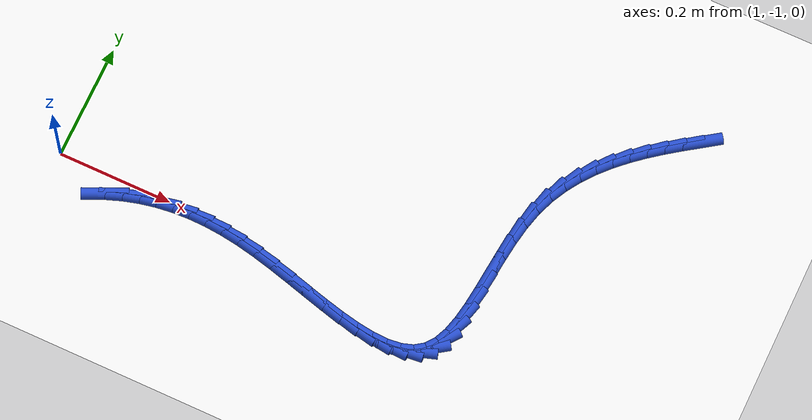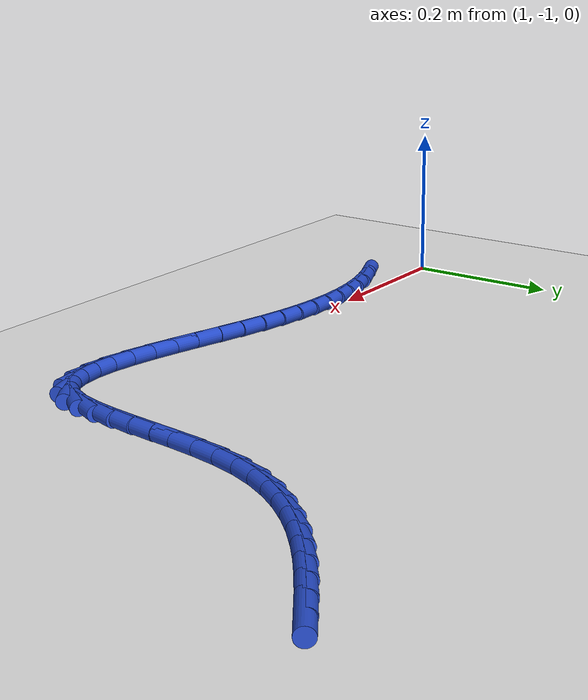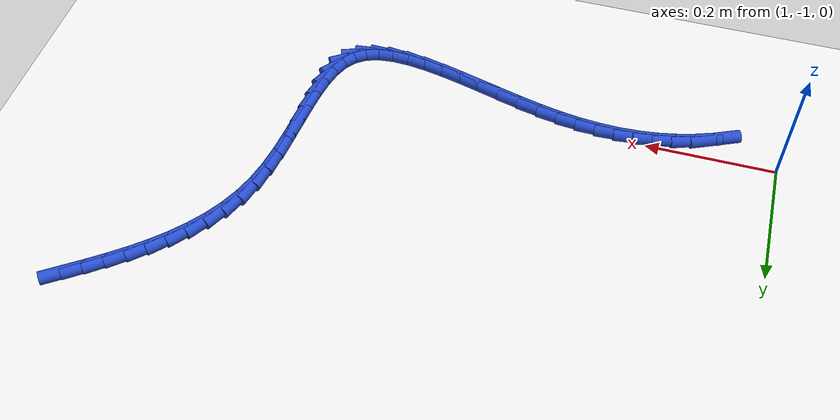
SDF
<sdf version="1.6">
 <world name="default">
  <model name="ground_plane">
   <static>1</static>
   <link name="link">
    <collision name="collision">
     <geometry><plane><normal>0 0 1</normal><size>100 100</size></plane></geometry>
     <surface><friction><ode><mu>100</mu><mu2>50</mu2></ode></friction></surface>
    </collision>
    <visual name="visual">
     <cast_shadows>0</cast_shadows>
     <geometry><plane><normal>0 0 1</normal><size>100 100</size></plane></geometry>
     <material>
      <script><uri>file://media/materials/scripts/gazebo.material</uri><name>Gazebo/WhiteGlow</name></script>
     </material>
    </visual>
   </link>
  </model>
  <model name="line">
   <link name="link_140">
    <pose>1.9505852316931442 -0.5416597754283873 0.01 0 1.57 0.6037733046722075</pose>
    <collision name="collision">
     <geometry><cylinder><radius>0.01</radius><length>0.08</length></cylinder></geometry>
    </collision>
    <visual name="visual">
     <material>
      <script><name>Gazebo/Blue</name><uri>file://media/materials/scripts/gazebo.material</uri></script>
     </material>
     <geometry><cylinder><radius>0.01</radius><length>0.08</length></cylinder></geometry>
    </visual>
   </link>
   <link name="link_141">
    <pose>1.9259888988393992 -0.5586236336538764 0.01 0 1.57 0.6257481165051744</pose>
    <collision name="collision">
     <geometry><cylinder><radius>0.01</radius><length>0.08</length></cylinder></geometry>
    </collision>
    <visual name="visual">
     <material>
      <script><name>Gazebo/Blue</name><uri>file://media/materials/scripts/gazebo.material</uri></script>
     </material>
     <geometry><cylinder><radius>0.01</radius><length>0.08</length></cylinder></geometry>
    </visual>
   </link>
   <link name="link_142">
    <pose>1.9016312277319858 -0.5762250371929364 0.01 0 1.57 0.6589991702993073</pose>
    <collision name="collision">
     <geometry><cylinder><radius>0.01</radius><length>0.08</length></cylinder></geometry>
    </collision>
    <visual name="visual">
     <material>
      <script><name>Gazebo/Blue</name><uri>file://media/materials/scripts/gazebo.material</uri></script>
     </material>
     <geometry><cylinder><radius>0.01</radius><length>0.08</length></cylinder></geometry>
    </visual>
   </link>
   <link name="link_143">
    <pose>1.8778269636547729 -0.5946614989622281 0.01 0 1.57 0.7034904250406478</pose>
    <collision name="collision">
     <geometry><cylinder><radius>0.01</radius><length>0.08</length></cylinder></geometry>
    </collision>
    <visual name="visual">
     <material>
      <script><name>Gazebo/Blue</name><uri>file://media/materials/scripts/gazebo.material</uri></script>
     </material>
     <geometry><cylinder><radius>0.01</radius><length>0.08</length></cylinder></geometry>
    </visual>
   </link>
   <link name="link_144">
    <pose>1.8548919779071276 -0.6141166213486677 0.01 0 1.57 0.7596428998936802</pose>
    <collision name="collision">
     <geometry><cylinder><radius>0.01</radius><length>0.08</length></cylinder></geometry>
    </collision>
    <visual name="visual">
     <material>
      <script><name>Gazebo/Blue</name><uri>file://media/materials/scripts/gazebo.material</uri></script>
     </material>
     <geometry><cylinder><radius>0.01</radius><length>0.08</length></cylinder></geometry>
    </visual>
   </link>
   <link name="link_145">
    <pose>1.8331421417884173 -0.6347740067391721 0.01 0 1.57 0.8278023327826615</pose>
    <collision name="collision">
     <geometry><cylinder><radius>0.01</radius><length>0.08</length></cylinder></geometry>
    </collision>
    <visual name="visual">
     <material>
      <script><name>Gazebo/Blue</name><uri>file://media/materials/scripts/gazebo.material</uri></script>
     </material>
     <geometry><cylinder><radius>0.01</radius><length>0.08</length></cylinder></geometry>
    </visual>
   </link>
   <link name="link_146">
    <pose>1.8128933265980078 -0.6568172575206574 0.01 0 1.57 0.9080014457962702</pose>
    <collision name="collision">
     <geometry><cylinder><radius>0.01</radius><length>0.08</length></cylinder></geometry>
    </collision>
    <visual name="visual">
     <material>
      <script><name>Gazebo/Blue</name><uri>file://media/materials/scripts/gazebo.material</uri></script>
     </material>
     <geometry><cylinder><radius>0.01</radius><length>0.08</length></cylinder></geometry>
    </visual>
   </link>
   <link name="link_147">
    <pose>1.7944614036352653 -0.6804299760800407 0.01 0 1.57 0.999665829079377</pose>
    <collision name="collision">
     <geometry><cylinder><radius>0.01</radius><length>0.08</length></cylinder></geometry>
    </collision>
    <visual name="visual">
     <material>
      <script><name>Gazebo/Blue</name><uri>file://media/materials/scripts/gazebo.material</uri></script>
     </material>
     <geometry><cylinder><radius>0.01</radius><length>0.08</length></cylinder></geometry>
    </visual>
   </link>
   <link name="link_148">
    <pose>1.7781622441995573 -0.7057957648042377 0.01 0 1.57 1.1013261944606585</pose>
    <collision name="collision">
     <geometry><cylinder><radius>0.01</radius><length>0.08</length></cylinder></geometry>
    </collision>
    <visual name="visual">
     <material>
      <script><name>Gazebo/Blue</name><uri>file://media/materials/scripts/gazebo.material</uri></script>
     </material>
     <geometry><cylinder><radius>0.01</radius><length>0.08</length></cylinder></geometry>
    </visual>
   </link>
   <link name="link_149">
    <pose>1.7643117195902502 -0.7330982260801652 0.01 0 1.57 1.2104624530986947</pose>
    <collision name="collision">
     <geometry><cylinder><radius>0.01</radius><length>0.08</length></cylinder></geometry>
    </collision>
    <visual name="visual">
     <material>
      <script><name>Gazebo/Blue</name><uri>file://media/materials/scripts/gazebo.material</uri></script>
     </material>
     <geometry><cylinder><radius>0.01</radius><length>0.08</length></cylinder></geometry>
    </visual>
   </link>
   <link name="link_150">
    <pose>1.7532257011067096 -0.7625209622947396 0.01 0 1.57 1.3172727877394144</pose>
    <collision name="collision">
     <geometry><cylinder><radius>0.01</radius><length>0.08</length></cylinder></geometry>
    </collision>
    <visual name="visual">
     <material>
      <script><name>Gazebo/Blue</name><uri>file://media/materials/scripts/gazebo.material</uri></script>
     </material>
     <geometry><cylinder><radius>0.01</radius><length>0.08</length></cylinder></geometry>
    </visual>
   </link>
   <link name="link_151">
    <pose>1.7450468641678811 -0.7940874674615553 0.01 0 1.57 1.3965500708115814</pose>
    <collision name="collision">
     <geometry><cylinder><radius>0.01</radius><length>0.08</length></cylinder></geometry>
    </collision>
    <visual name="visual">
     <material>
      <script><name>Gazebo/Blue</name><uri>file://media/materials/scripts/gazebo.material</uri></script>
     </material>
     <geometry><cylinder><radius>0.01</radius><length>0.08</length></cylinder></geometry>
    </visual>
   </link>
   <link name="link_152">
    <pose>1.7392219159425075 -0.8271778580256858 0.01 0 1.57 1.4473132422828143</pose>
    <collision name="collision">
     <geometry><cylinder><radius>0.01</radius><length>0.08</length></cylinder></geometry>
    </collision>
    <visual name="visual">
     <material>
      <script><name>Gazebo/Blue</name><uri>file://media/materials/scripts/gazebo.material</uri></script>
     </material>
     <geometry><cylinder><radius>0.01</radius><length>0.08</length></cylinder></geometry>
    </visual>
   </link>
   <link name="link_153">
    <pose>1.7350227716980244 -0.8610106666409492 0.01 0 1.57 1.4734120203321799</pose>
    <collision name="collision">
     <geometry><cylinder><radius>0.01</radius><length>0.08</length></cylinder></geometry>
    </collision>
    <visual name="visual">
     <material>
      <script><name>Gazebo/Blue</name><uri>file://media/materials/scripts/gazebo.material</uri></script>
     </material>
     <geometry><cylinder><radius>0.01</radius><length>0.08</length></cylinder></geometry>
    </visual>
   </link>
   <link name="link_154">
    <pose>1.7317213467012453 -0.894804425960589 0.01 0 1.57 1.4761006456327983</pose>
    <collision name="collision">
     <geometry><cylinder><radius>0.01</radius><length>0.08</length></cylinder></geometry>
    </collision>
    <visual name="visual">
     <material>
      <script><name>Gazebo/Blue</name><uri>file://media/materials/scripts/gazebo.material</uri></script>
     </material>
     <geometry><cylinder><radius>0.01</radius><length>0.08</length></cylinder></geometry>
    </visual>
   </link>
   <link name="link_155">
    <pose>1.7285895562189841 -0.9277776686378497 0.01 0 1.57 1.4537031649670396</pose>
    <collision name="collision">
     <geometry><cylinder><radius>0.01</radius><length>0.08</length></cylinder></geometry>
    </collision>
    <visual name="visual">
     <material>
      <script><name>Gazebo/Blue</name><uri>file://media/materials/scripts/gazebo.material</uri></script>
     </material>
     <geometry><cylinder><radius>0.01</radius><length>0.08</length></cylinder></geometry>
    </visual>
   </link>
   <link name="link_156">
    <pose>1.724899315518054 -0.9591489273259731 0.01 0 1.57 1.400768823338802</pose>
    <collision name="collision">
     <geometry><cylinder><radius>0.01</radius><length>0.08</length></cylinder></geometry>
    </collision>
    <visual name="visual">
     <material>
      <script><name>Gazebo/Blue</name><uri>file://media/materials/scripts/gazebo.material</uri></script>
     </material>
     <geometry><cylinder><radius>0.01</radius><length>0.08</length></cylinder></geometry>
    </visual>
   </link>
   <link name="link_157">
    <pose>1.7199225398652693 -0.9881367346782035 0.01 0 1.57 1.3063910602905806</pose>
    <collision name="collision">
     <geometry><cylinder><radius>0.01</radius><length>0.08</length></cylinder></geometry>
    </collision>
    <visual name="visual">
     <material>
      <script><name>Gazebo/Blue</name><uri>file://media/materials/scripts/gazebo.material</uri></script>
     </material>
     <geometry><cylinder><radius>0.01</radius><length>0.08</length></cylinder></geometry>
    </visual>
   </link>
   <link name="link_158">
    <pose>1.7129311445274433 -1.0139596233477848 0.01 0 1.57 1.1521441915518917</pose>
    <collision name="collision">
     <geometry><cylinder><radius>0.01</radius><length>0.08</length></cylinder></geometry>
    </collision>
    <visual name="visual">
     <material>
      <script><name>Gazebo/Blue</name><uri>file://media/materials/scripts/gazebo.material</uri></script>
     </material>
     <geometry><cylinder><radius>0.01</radius><length>0.08</length></cylinder></geometry>
    </visual>
   </link>
   <link name="link_159">
    <pose>1.7031970447713896 -1.0358361259879603 0.01 0 1.57 0.9146019049053974</pose>
    <collision name="collision">
     <geometry><cylinder><radius>0.01</radius><length>0.08</length></cylinder></geometry>
    </collision>
    <visual name="visual">
     <material>
      <script><name>Gazebo/Blue</name><uri>file://media/materials/scripts/gazebo.material</uri></script>
     </material>
     <geometry><cylinder><radius>0.01</radius><length>0.08</length></cylinder></geometry>
    </visual>
   </link>
   <link name="link_160">
    <pose>1.6899921558639217 -1.0529847752519734 0.01 0 1.57 0.6021349946953102</pose>
    <collision name="collision">
     <geometry><cylinder><radius>0.01</radius><length>0.08</length></cylinder></geometry>
    </collision>
    <visual name="visual">
     <material>
      <script><name>Gazebo/Blue</name><uri>file://media/materials/scripts/gazebo.material</uri></script>
     </material>
     <geometry><cylinder><radius>0.01</radius><length>0.08</length></cylinder></geometry>
    </visual>
   </link>
   <link name="link_161">
    <pose>1.6727589283634765 -1.0648287530941156 0.01 0 1.57 0.3177025816119068</pose>
    <collision name="collision">
     <geometry><cylinder><radius>0.01</radius><length>0.08</length></cylinder></geometry>
    </collision>
    <visual name="visual">
     <material>
      <script><name>Gazebo/Blue</name><uri>file://media/materials/scripts/gazebo.material</uri></script>
     </material>
     <geometry><cylinder><radius>0.01</radius><length>0.08</length></cylinder></geometry>
    </visual>
   </link>
   <link name="link_162">
    <pose>1.651732905209707 -1.0717429846529654 0.01 0 1.57 0.1078168873749518</pose>
    <collision name="collision">
     <geometry><cylinder><radius>0.01</radius><length>0.08</length></cylinder></geometry>
    </collision>
    <visual name="visual">
     <material>
      <script><name>Gazebo/Blue</name><uri>file://media/materials/scripts/gazebo.material</uri></script>
     </material>
     <geometry><cylinder><radius>0.01</radius><length>0.08</length></cylinder></geometry>
    </visual>
   </link>
   <link name="link_163">
    <pose>1.6273800086618726 -1.0743788596409964 0.01 0 1.57 -0.03640149948559205</pose>
    <collision name="collision">
     <geometry><cylinder><radius>0.01</radius><length>0.08</length></cylinder></geometry>
    </collision>
    <visual name="visual">
     <material>
      <script><name>Gazebo/Blue</name><uri>file://media/materials/scripts/gazebo.material</uri></script>
     </material>
     <geometry><cylinder><radius>0.01</radius><length>0.08</length></cylinder></geometry>
    </visual>
   </link>
   <link name="link_164">
    <pose>1.6001661860964977 -1.0733877979124289 0.01 0 1.57 -0.13317329311911386</pose>
    <collision name="collision">
     <geometry><cylinder><radius>0.01</radius><length>0.08</length></cylinder></geometry>
    </collision>
    <visual name="visual">
     <material>
      <script><name>Gazebo/Blue</name><uri>file://media/materials/scripts/gazebo.material</uri></script>
     </material>
     <geometry><cylinder><radius>0.01</radius><length>0.08</length></cylinder></geometry>
    </visual>
   </link>
   <link name="link_165">
    <pose>1.57055738489011 -1.069421219321484 0.01 0 1.57 -0.19688053026487135</pose>
    <collision name="collision">
     <geometry><cylinder><radius>0.01</radius><length>0.08</length></cylinder></geometry>
    </collision>
    <visual name="visual">
     <material>
      <script><name>Gazebo/Blue</name><uri>file://media/materials/scripts/gazebo.material</uri></script>
     </material>
     <geometry><cylinder><radius>0.01</radius><length>0.08</length></cylinder></geometry>
    </visual>
   </link>
   <link name="link_166">
    <pose>1.5390195524192343 -1.0631305437223806 0.01 0 1.57 -0.23678044862469835</pose>
    <collision name="collision">
     <geometry><cylinder><radius>0.01</radius><length>0.08</length></cylinder></geometry>
    </collision>
    <visual name="visual">
     <material>
      <script><name>Gazebo/Blue</name><uri>file://media/materials/scripts/gazebo.material</uri></script>
     </material>
     <geometry><cylinder><radius>0.01</radius><length>0.08</length></cylinder></geometry>
    </visual>
   </link>
   <link name="link_167">
    <pose>1.5060186360603969 -1.0551671909693394 0.01 0 1.57 -0.25836198515806563</pose>
    <collision name="collision">
     <geometry><cylinder><radius>0.01</radius><length>0.08</length></cylinder></geometry>
    </collision>
    <visual name="visual">
     <material>
      <script><name>Gazebo/Blue</name><uri>file://media/materials/scripts/gazebo.material</uri></script>
     </material>
     <geometry><cylinder><radius>0.01</radius><length>0.08</length></cylinder></geometry>
    </visual>
   </link>
   <link name="link_168">
    <pose>1.4720205831901245 -1.0461825809165806 0.01 0 1.57 -0.26456333083014294</pose>
    <collision name="collision">
     <geometry><cylinder><radius>0.01</radius><length>0.08</length></cylinder></geometry>
    </collision>
    <visual name="visual">
     <material>
      <script><name>Gazebo/Blue</name><uri>file://media/materials/scripts/gazebo.material</uri></script>
     </material>
     <geometry><cylinder><radius>0.01</radius><length>0.08</length></cylinder></geometry>
    </visual>
   </link>
   <link name="link_169">
    <pose>1.4374913411849426 -1.0368281334183245 0.01 0 1.57 -0.25648691995834694</pose>
    <collision name="collision">
     <geometry><cylinder><radius>0.01</radius><length>0.08</length></cylinder></geometry>
    </collision>
    <visual name="visual">
     <material>
      <script><name>Gazebo/Blue</name><uri>file://media/materials/scripts/gazebo.material</uri></script>
     </material>
     <geometry><cylinder><radius>0.01</radius><length>0.08</length></cylinder></geometry>
    </visual>
   </link>
   <link name="link_170">
    <pose>1.4028968574213767 -1.0277552683287905 0.01 0 1.57 -0.23370130859535818</pose>
    <collision name="collision">
     <geometry><cylinder><radius>0.01</radius><length>0.08</length></cylinder></geometry>
    </collision>
    <visual name="visual">
     <material>
      <script><name>Gazebo/Blue</name><uri>file://media/materials/scripts/gazebo.material</uri></script>
     </material>
     <geometry><cylinder><radius>0.01</radius><length>0.08</length></cylinder></geometry>
    </visual>
   </link>
   <link name="link_171">
    <pose>1.3687030792759547 -1.0196154055021998 0.01 0 1.57 -0.19443145187646702</pose>
    <collision name="collision">
     <geometry><cylinder><radius>0.01</radius><length>0.08</length></cylinder></geometry>
    </collision>
    <visual name="visual">
     <material>
      <script><name>Gazebo/Blue</name><uri>file://media/materials/scripts/gazebo.material</uri></script>
     </material>
     <geometry><cylinder><radius>0.01</radius><length>0.08</length></cylinder></geometry>
    </visual>
   </link>
   <link name="link_172">
    <pose>1.3353677448914354 -1.0130510399541697 0.01 0 1.57 -0.14219596317292668</pose>
    <collision name="collision">
     <geometry><cylinder><radius>0.01</radius><length>0.08</length></cylinder></geometry>
    </collision>
    <visual name="visual">
     <material>
      <script><name>Gazebo/Blue</name><uri>file://media/materials/scripts/gazebo.material</uri></script>
     </material>
     <geometry><cylinder><radius>0.01</radius><length>0.08</length></cylinder></geometry>
    </visual>
   </link>
   <link name="link_173">
    <pose>1.303096944347464 -1.0084310822938012 0.01 0 1.57 -0.0836770551184167</pose>
    <collision name="collision">
     <geometry><cylinder><radius>0.01</radius><length>0.08</length></cylinder></geometry>
    </collision>
    <visual name="visual">
     <material>
      <script><name>Gazebo/Blue</name><uri>file://media/materials/scripts/gazebo.material</uri></script>
     </material>
     <geometry><cylinder><radius>0.01</radius><length>0.08</length></cylinder></geometry>
    </visual>
   </link>
   <link name="link_174">
    <pose>1.271804296637713 -1.0058064771284343 0.01 0 1.57 -0.019597258232559003</pose>
    <collision name="collision">
     <geometry><cylinder><radius>0.01</radius><length>0.08</length></cylinder></geometry>
    </collision>
    <visual name="visual">
     <material>
      <script><name>Gazebo/Blue</name><uri>file://media/materials/scripts/gazebo.material</uri></script>
     </material>
     <geometry><cylinder><radius>0.01</radius><length>0.08</length></cylinder></geometry>
    </visual>
   </link>
   <link name="link_175">
    <pose>1.2413869890299365 -1.0052103049740766 0.01 0 1.57 0.04938979721185323</pose>
    <collision name="collision">
     <geometry><cylinder><radius>0.01</radius><length>0.08</length></cylinder></geometry>
    </collision>
    <visual name="visual">
     <material>
      <script><name>Gazebo/Blue</name><uri>file://media/materials/scripts/gazebo.material</uri></script>
     </material>
     <geometry><cylinder><radius>0.01</radius><length>0.08</length></cylinder></geometry>
    </visual>
   </link>
   <link name="link_176">
    <pose>1.2117422087918897 -1.0066756463467366 0.01 0 1.57 0.12224936668471098</pose>
    <collision name="collision">
     <geometry><cylinder><radius>0.01</radius><length>0.08</length></cylinder></geometry>
    </collision>
    <visual name="visual">
     <material>
      <script><name>Gazebo/Blue</name><uri>file://media/materials/scripts/gazebo.material</uri></script>
     </material>
     <geometry><cylinder><radius>0.01</radius><length>0.08</length></cylinder></geometry>
    </visual>
   </link>
   <link name="link_177">
    <pose>1.1827671431913271 -1.0102355817624218 0.01 0 1.57 0.19759786470193158</pose>
    <collision name="collision">
     <geometry><cylinder><radius>0.01</radius><length>0.08</length></cylinder></geometry>
    </collision>
    <visual name="visual">
     <material>
      <script><name>Gazebo/Blue</name><uri>file://media/materials/scripts/gazebo.material</uri></script>
     </material>
     <geometry><cylinder><radius>0.01</radius><length>0.08</length></cylinder></geometry>
    </visual>
   </link>
   <link name="link_178">
    <pose>1.154358979496005 -1.01592319173714 0.01 0 1.57 0.27380574654429096</pose>
    <collision name="collision">
     <geometry><cylinder><radius>0.01</radius><length>0.08</length></cylinder></geometry>
    </collision>
    <visual name="visual">
     <material>
      <script><name>Gazebo/Blue</name><uri>file://media/materials/scripts/gazebo.material</uri></script>
     </material>
     <geometry><cylinder><radius>0.01</radius><length>0.08</length></cylinder></geometry>
    </visual>
   </link>
   <link name="link_179">
    <pose>1.1264149049736774 -1.0237715567868997 0.01 0 1.57 0.34915814741641293</pose>
    <collision name="collision">
     <geometry><cylinder><radius>0.01</radius><length>0.08</length></cylinder></geometry>
    </collision>
    <visual name="visual">
     <material>
      <script><name>Gazebo/Blue</name><uri>file://media/materials/scripts/gazebo.material</uri></script>
     </material>
     <geometry><cylinder><radius>0.01</radius><length>0.08</length></cylinder></geometry>
    </visual>
   </link>
   <link name="link_180">
    <pose>1.0988321068920996 -1.0338137574277082 0.01 0 1.57 0.42203695681933734</pose>
    <collision name="collision">
     <geometry><cylinder><radius>0.01</radius><length>0.08</length></cylinder></geometry>
    </collision>
    <visual name="visual">
     <material>
      <script><name>Gazebo/Blue</name><uri>file://media/materials/scripts/gazebo.material</uri></script>
     </material>
     <geometry><cylinder><radius>0.01</radius><length>0.08</length></cylinder></geometry>
    </visual>
   </link>
  </model>
 </world>
</sdf>
